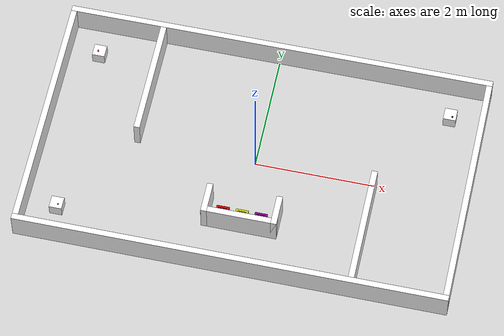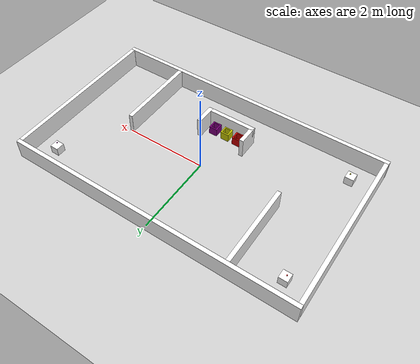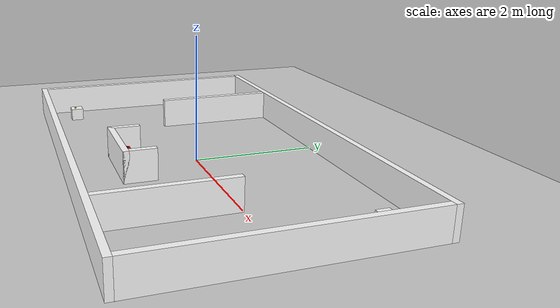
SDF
<?xml version="1.0" ?>
<sdf version="1.9">
  <world name="demo2">

    <plugin filename="gz-sim-physics-system" name="gz::sim::systems::Physics"/>
    <plugin filename="gz-sim-user-commands-system" name="gz::sim::systems::UserCommands"/>
    <plugin filename="gz-sim-scene-broadcaster-system" name="gz::sim::systems::SceneBroadcaster"/>
    <plugin filename="gz-sim-imu-system" name="gz::sim::systems::Imu"/>

    <plugin filename="gz-sim-sensors-system" name="gz::sim::systems::Sensors">
      <render_engine>ogre2</render_engine>
    </plugin>

    <physics type="ode">
      <max_step_size>0.005</max_step_size>
      <real_time_update_rate>200</real_time_update_rate>
    </physics>

    <light type="directional" name="sun">
      <cast_shadows>false</cast_shadows>
      <pose>0 0 10 0 0 0</pose>
      <diffuse>0.8 0.8 0.8 1</diffuse>
      <specular>0.2 0.2 0.2 1</specular>
      <direction>-0.5 0.1 -0.9</direction>
    </light>

    <model name="ground_plane">
      <static>true</static>
      <link name="link">
        <collision name="collision">
          <geometry><plane><normal>0 0 1</normal><size>15 15</size></plane></geometry>
        </collision>
        <visual name="visual">
          <geometry><plane><normal>0 0 1</normal><size>15 15</size></plane></geometry>
          <material>
            <ambient>0.8 0.8 0.8 1</ambient>
            <diffuse>0.8 0.8 0.8 1</diffuse>
          </material>
        </visual>
      </link>
    </model>

    <model name="wall_north">
      <static>true</static>
      <pose>0 2.05 0.25 0 0 0</pose>
      <link name="link">
        <collision name="collision"><geometry><box><size>7.2 0.1 0.5</size></box></geometry></collision>
        <visual name="visual"><geometry><box><size>7.2 0.1 0.5</size></box></geometry><material><ambient>1 1 1 1</ambient><diffuse>1 1 1 1</diffuse></material></visual>
      </link>
    </model>

    <model name="wall_south">
      <static>true</static>
      <pose>0 -2.05 0.25 0 0 0</pose>
      <link name="link">
        <collision name="collision"><geometry><box><size>7.2 0.1 0.5</size></box></geometry></collision>
        <visual name="visual"><geometry><box><size>7.2 0.1 0.5</size></box></geometry><material><ambient>1 1 1 1</ambient><diffuse>1 1 1 1</diffuse></material></visual>
      </link>
    </model>

    <model name="wall_east">
      <static>true</static>
      <pose>3.55 0 0.25 0 0 0</pose>
      <link name="link">
        <collision name="collision"><geometry><box><size>0.1 4.0 0.5</size></box></geometry></collision>
        <visual name="visual"><geometry><box><size>0.1 4.0 0.5</size></box></geometry><material><ambient>1 1 1 1</ambient><diffuse>1 1 1 1</diffuse></material></visual>
      </link>
    </model>

    <model name="wall_west">
      <static>true</static>
      <pose>-3.55 0 0.25 0 0 0</pose>
      <link name="link">
        <collision name="collision"><geometry><box><size>0.1 4.0 0.5</size></box></geometry></collision>
        <visual name="visual"><geometry><box><size>0.1 4.0 0.5</size></box></geometry><material><ambient>1 1 1 1</ambient><diffuse>1 1 1 1</diffuse></material></visual>
      </link>
    </model>

    <model name="obstacle_1">
      <static>true</static>
      <pose>-0.425 -1.0 0 1.5708 0 0</pose>
      <link name="link">
        <collision name="collision"><geometry><mesh><uri>model://obstacle_box/meshes/box.stl</uri><scale>0.001 0.001 0.001</scale></mesh></geometry></collision>
        <visual name="visual"><geometry><mesh><uri>model://obstacle_box/meshes/box.stl</uri><scale>0.001 0.001 0.001</scale></mesh></geometry>
          <material><ambient>0.8 0 0 0.9</ambient><diffuse>0.8 0 0 0.9</diffuse><specular>0.6 0.6 0.6 1</specular></material>
        </visual>
      </link>
    </model>

    <model name="obstacle_2">
      <static>true</static>
      <pose>-0.105 -1.0 0 1.5708 0 0</pose>
      <link name="link">
        <collision name="collision"><geometry><mesh><uri>model://obstacle_box/meshes/box.stl</uri><scale>0.001 0.001 0.001</scale></mesh></geometry></collision>
        <visual name="visual"><geometry><mesh><uri>model://obstacle_box/meshes/box.stl</uri><scale>0.001 0.001 0.001</scale></mesh></geometry>
          <material><ambient>0.8 0.8 0 0.9</ambient><diffuse>0.8 0.8 0 0.9</diffuse><specular>0.6 0.6 0.6 1</specular></material>
        </visual>
      </link>
    </model>

    <model name="obstacle_3">
      <static>true</static>
      <pose>0.215 -1.0 0 1.5708 0 0</pose>
      <link name="link">
        <collision name="collision"><geometry><mesh><uri>model://obstacle_box/meshes/box.stl</uri><scale>0.001 0.001 0.001</scale></mesh></geometry></collision>
        <visual name="visual"><geometry><mesh><uri>model://obstacle_box/meshes/box.stl</uri><scale>0.001 0.001 0.001</scale></mesh></geometry>
          <material><ambient>0.5 0 0.5 0.9</ambient><diffuse>0.5 0 0.5 0.9</diffuse><specular>0.6 0.6 0.6 1</specular></material>
        </visual>
      </link>
    </model>

    <model name="center_wall_back">
      <static>true</static>
      <pose>0 -1.26 0.25 0 0 0</pose>
      <link name="link">
        <collision name="collision"><geometry><box><size>1.26 0.1 0.5</size></box></geometry></collision>
        <visual name="visual"><geometry><box><size>1.26 0.1 0.5</size></box></geometry><material><ambient>1 1 1 1</ambient><diffuse>1 1 1 1</diffuse></material></visual>
      </link>
    </model>

    <model name="center_wall_left">
      <static>true</static>
      <pose>-0.58 -1.05 0.25 0 0 0</pose>
      <link name="link">
        <collision name="collision"><geometry><box><size>0.1 0.52 0.5</size></box></geometry></collision>
        <visual name="visual"><geometry><box><size>0.1 0.52 0.5</size></box></geometry><material><ambient>1 1 1 1</ambient><diffuse>1 1 1 1</diffuse></material></visual>
      </link>
    </model>

    <model name="center_wall_right">
      <static>true</static>
      <pose>0.58 -1.05 0.25 0 0 0</pose>
      <link name="link">
        <collision name="collision"><geometry><box><size>0.1 0.52 0.5</size></box></geometry></collision>
        <visual name="visual"><geometry><box><size>0.1 0.52 0.5</size></box></geometry><material><ambient>1 1 1 1</ambient><diffuse>1 1 1 1</diffuse></material></visual>
      </link>
    </model>

    <model name="extra_wall_1"><static>true</static><pose>-2.0 1.0 0.25 0 0 0</pose><link name="link"><collision name="collision"><geometry><box><size>0.1 2.0 0.5</size></box></geometry></collision><visual name="visual"><geometry><box><size>0.1 2.0 0.5</size></box></geometry><material><ambient>1 1 1 1</ambient><diffuse>1 1 1 1</diffuse></material></visual></link></model>
    <model name="extra_wall_2"><static>true</static><pose>2.0 -1.0 0.25 0 0 0</pose><link name="link"><collision name="collision"><geometry><box><size>0.1 2.0 0.5</size></box></geometry></collision><visual name="visual"><geometry><box><size>0.1 2.0 0.5</size></box></geometry><material><ambient>1 1 1 1</ambient><diffuse>1 1 1 1</diffuse></material></visual></link></model>

    <model name="white_box_1"><static>true</static><pose>-3.0 1.5 0.105 0 0 0</pose><link name="link"><collision name="collision"><geometry><box><size>0.21 0.21 0.21</size></box></geometry></collision><visual name="visual"><geometry><box><size>0.21 0.21 0.21</size></box></geometry><material><ambient>1 1 1 1</ambient><diffuse>1 1 1 1</diffuse></material></visual></link></model>
    <model name="red_object"><static>false</static><pose>-3.02 1.48 0.22 0 0 0.5</pose><link name="link"><inertial><mass>0.2</mass><inertia><ixx>1.33e-05</ixx><ixy>0</ixy><ixz>0</ixz><iyy>1.33e-05</iyy><iyz>0</iyz><izz>1.33e-05</izz></inertia></inertial><collision name="collision"><geometry><box><size>0.02 0.02 0.02</size></box></geometry><surface><friction><ode><mu>5.0</mu><mu2>5.0</mu2></ode></friction><contact><ode><kp>1e6</kp><kd>1.0</kd></ode></contact></surface></collision><visual name="visual"><geometry><box><size>0.02 0.02 0.02</size></box></geometry><material><ambient>1 0 0 1</ambient><diffuse>1 0 0 1</diffuse></material></visual></link></model>
    <model name="white_box_2"><static>true</static><pose>-3.0 -1.5 0.105 0 0 0</pose><link name="link"><collision name="collision"><geometry><box><size>0.21 0.21 0.21</size></box></geometry></collision><visual name="visual"><geometry><box><size>0.21 0.21 0.21</size></box></geometry><material><ambient>1 1 1 1</ambient><diffuse>1 1 1 1</diffuse></material></visual></link></model>
    <model name="yellow_object"><static>false</static><pose>-2.97 -1.53 0.22 0 0 -0.2</pose><link name="link"><inertial><mass>0.2</mass><inertia><ixx>1.33e-05</ixx><ixy>0</ixy><ixz>0</ixz><iyy>1.33e-05</iyy><iyz>0</iyz><izz>1.33e-05</izz></inertia></inertial><collision name="collision"><geometry><box><size>0.02 0.02 0.02</size></box></geometry><surface><friction><ode><mu>5.0</mu><mu2>5.0</mu2></ode></friction><contact><ode><kp>1e6</kp><kd>1.0</kd></ode></contact></surface></collision><visual name="visual"><geometry><box><size>0.02 0.02 0.02</size></box></geometry><material><ambient>1 1 0 1</ambient><diffuse>1 1 0 1</diffuse></material></visual></link></model>
    <model name="white_box_3"><static>true</static><pose>3.0 1.5 0.105 0 0 0</pose><link name="link"><collision name="collision"><geometry><box><size>0.21 0.21 0.21</size></box></geometry></collision><visual name="visual"><geometry><box><size>0.21 0.21 0.21</size></box></geometry><material><ambient>1 1 1 1</ambient><diffuse>1 1 1 1</diffuse></material></visual></link></model>
    <model name="purple_object"><static>false</static><pose>3.04 1.45 0.22 0 0 1.1</pose><link name="link"><inertial><mass>0.2</mass><inertia><ixx>1.33e-05</ixx><ixy>0</ixy><ixz>0</ixz><iyy>1.33e-05</iyy><iyz>0</iyz><izz>1.33e-05</izz></inertia></inertial><collision name="collision"><geometry><box><size>0.02 0.02 0.02</size></box></geometry><surface><friction><ode><mu>5.0</mu><mu2>5.0</mu2></ode></friction><contact><ode><kp>1e6</kp><kd>1.0</kd></ode></contact></surface></collision><visual name="visual"><geometry><box><size>0.02 0.02 0.02</size></box></geometry><material><ambient>0.5 0 0.5 1</ambient><diffuse>0.5 0 0.5 1</diffuse></material></visual></link></model>

  </world>
</sdf>
